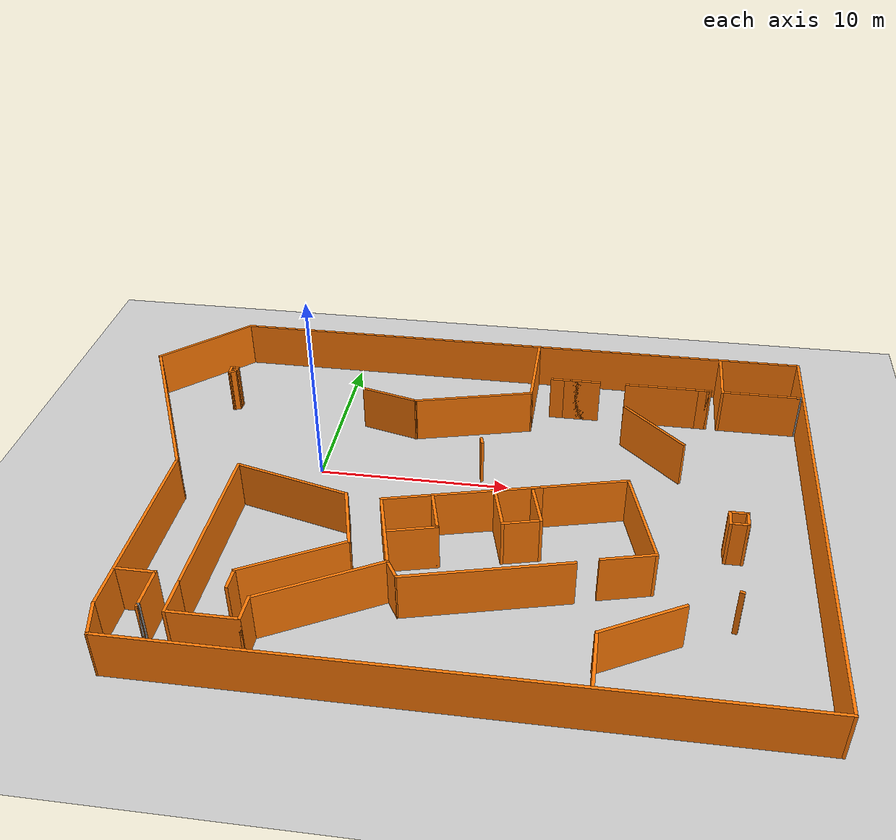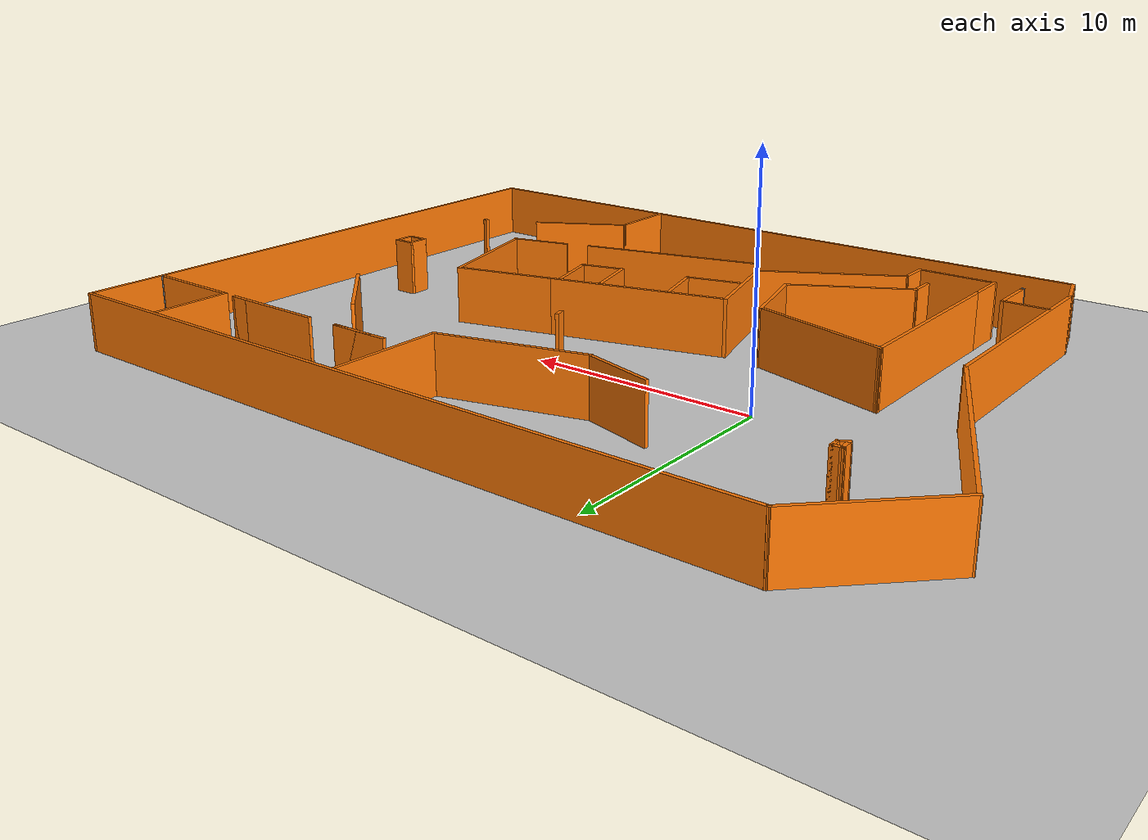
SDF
<sdf version="1.6">
 <world name="default">
  <light name="sun" type="directional">
   <pose>0 0 10 0 -0 0</pose>
   <diffuse>0.8 0.8 0.8 1</diffuse>
   <specular>0.2 0.2 0.2 1</specular>
   <attenuation>
    <range>1000</range>
    <constant>0.9</constant>
    <linear>0.01</linear>
    <quadratic>0.001</quadratic>
   </attenuation>
   <direction>-0.5 0.1 -0.9</direction>
  </light>
  <model name="ground_plane">
   <static>1</static>
   <link name="link">
    <collision name="collision">
     <geometry><plane><normal>0 0 1</normal><size>100 100</size></plane></geometry>
     <surface>
      <contact><collide_bitmask>65535</collide_bitmask></contact>
      <friction><ode><mu>100</mu><mu2>50</mu2></ode></friction>
     </surface>
    </collision>
    <visual name="visual">
     <cast_shadows>0</cast_shadows>
     <geometry><plane><normal>0 0 1</normal><size>100 100</size></plane></geometry>
     <material>
      <script><uri>file://media/materials/scripts/gazebo.material</uri><name>Gazebo/Grey</name></script>
     </material>
    </visual>
   </link>
  </model>
  <gravity>0 0 -9.8</gravity>
  <magnetic_field>6e-06 2.3e-05 -4.2e-05</magnetic_field>
  <atmosphere type="adiabatic"/>
  <physics name="default_physics" default="0" type="ode">
   <max_step_size>0.001</max_step_size>
   <real_time_factor>1</real_time_factor>
   <real_time_update_rate>1000</real_time_update_rate>
  </physics>
  <scene><ambient>0.4 0.4 0.4 1</ambient><background>0.7 0.7 0.7 1</background><shadows>1</shadows></scene>
  <spherical_coordinates>
   <surface_model>EARTH_WGS84</surface_model>
   <latitude_deg>0</latitude_deg>
   <longitude_deg>0</longitude_deg>
   <elevation>0</elevation>
   <heading_deg>0</heading_deg>
  </spherical_coordinates>
  <model name="building">
   <pose>7.1915 -2.62982 0 0 -0 0</pose>
   <link name="Wall_0">
    <collision name="Wall_0_Collision">
     <geometry><box><size>9 0.15 2.5</size></box></geometry>
     <pose>0 0 1.25 0 -0 0</pose>
    </collision>
    <visual name="Wall_0_Visual">
     <pose>0 0 1.25 0 -0 0</pose>
     <geometry><box><size>9 0.15 2.5</size></box></geometry>
     <material>
      <script><uri>file://media/materials/scripts/gazebo.material</uri><name>Gazebo/Grey</name></script>
      <ambient>0.996078 0.47451 0.0196078 1</ambient>
     </material>
    </visual>
    <pose>-10.5026 -5.02041 0 0 -0 1.5708</pose>
   </link>
   <link name="Wall_1">
    <collision name="Wall_1_Collision">
     <geometry><box><size>6.25 0.15 2.5</size></box></geometry>
     <pose>0 0 1.25 0 -0 0</pose>
    </collision>
    <visual name="Wall_1_Visual">
     <pose>0 0 1.25 0 -0 0</pose>
     <geometry><box><size>6.25 0.15 2.5</size></box></geometry>
     <material>
      <script><uri>file://media/materials/scripts/gazebo.material</uri><name>Gazebo/Grey</name></script>
      <ambient>0.996078 0.47451 0.0196078 1</ambient>
     </material>
    </visual>
    <pose>-7.55655 -1.38481 0 0 0 -0.261799</pose>
   </link>
   <link name="Wall_10">
    <collision name="Wall_10_Collision">
     <geometry><box><size>6.5 0.15 2.5</size></box></geometry>
     <pose>0 0 1.25 0 -0 0</pose>
    </collision>
    <visual name="Wall_10_Visual">
     <pose>0 0 1.25 0 -0 0</pose>
     <geometry><box><size>6.5 0.15 2.5</size></box></geometry>
     <material>
      <script><uri>file://media/materials/scripts/gazebo.material</uri><name>Gazebo/Grey</name></script>
      <ambient>0.996078 0.47451 0.0196078 1</ambient>
     </material>
    </visual>
    <pose>-4.403 -8.35791 0 0 -0 0.523599</pose>
   </link>
   <link name="Wall_11">
    <collision name="Wall_11_Collision">
     <geometry><box><size>4.75 0.15 2.5</size></box></geometry>
     <pose>0 0 1.25 0 -0 0</pose>
    </collision>
    <visual name="Wall_11_Visual">
     <pose>0 0 1.25 0 -0 0</pose>
     <geometry><box><size>4.75 0.15 2.5</size></box></geometry>
     <material>
      <script><uri>file://media/materials/scripts/gazebo.material</uri><name>Gazebo/Grey</name></script>
      <ambient>0.996078 0.47451 0.0196078 1</ambient>
     </material>
    </visual>
    <pose>-2.24865 -4.54878 0 0 -0 1.8326</pose>
   </link>
   <link name="Wall_12">
    <collision name="Wall_12_Collision">
     <geometry><box><size>8 0.15 2.5</size></box></geometry>
     <pose>0 0 1.25 0 -0 0</pose>
    </collision>
    <visual name="Wall_12_Visual">
     <pose>0 0 1.25 0 -0 0</pose>
     <geometry><box><size>8 0.15 2.5</size></box></geometry>
     <material>
      <script><uri>file://media/materials/scripts/gazebo.material</uri><name>Gazebo/Grey</name></script>
      <ambient>0.996078 0.47451 0.0196078 1</ambient>
     </material>
    </visual>
    <pose>0.947326 -1.31129 0 0 -0 0.261799</pose>
   </link>
   <link name="Wall_13">
    <collision name="Wall_13_Collision">
     <geometry><box><size>4.5 0.15 2.5</size></box></geometry>
     <pose>0 0 1.25 0 -0 0</pose>
    </collision>
    <visual name="Wall_13_Visual">
     <pose>0 0 1.25 0 -0 0</pose>
     <geometry><box><size>4.5 0.15 2.5</size></box></geometry>
     <material>
      <script><uri>file://media/materials/scripts/gazebo.material</uri><name>Gazebo/Grey</name></script>
      <ambient>0.996078 0.47451 0.0196078 1</ambient>
     </material>
    </visual>
    <pose>6.83947 0.267506 0 0 -0 0.261799</pose>
   </link>
   <link name="Wall_14">
    <collision name="Wall_14_Collision">
     <geometry><box><size>5.75 0.15 2.5</size></box></geometry>
     <pose>0 0 1.25 0 -0 0</pose>
    </collision>
    <visual name="Wall_14_Visual">
     <pose>0 0 1.25 0 -0 0</pose>
     <geometry><box><size>5.75 0.15 2.5</size></box></geometry>
     <material>
      <script><uri>file://media/materials/scripts/gazebo.material</uri><name>Gazebo/Grey</name></script>
      <ambient>0.996078 0.47451 0.0196078 1</ambient>
     </material>
    </visual>
    <pose>9.66506 -1.87416 0 0 0 -1.309</pose>
   </link>
   <link name="Wall_15">
    <collision name="Wall_15_Collision">
     <geometry><box><size>2.75 0.15 2.5</size></box></geometry>
     <pose>0 0 1.25 0 -0 0</pose>
    </collision>
    <visual name="Wall_15_Visual">
     <pose>0 0 1.25 0 -0 0</pose>
     <geometry><box><size>2.75 0.15 2.5</size></box></geometry>
     <material>
      <script><uri>file://media/materials/scripts/gazebo.material</uri><name>Gazebo/Grey</name></script>
      <ambient>0.996078 0.47451 0.0196078 1</ambient>
     </material>
    </visual>
    <pose>9.13405 -4.91521 0 0 0 -2.87979</pose>
   </link>
   <link name="Wall_19">
    <collision name="Wall_19_Collision">
     <geometry><box><size>8.25 0.15 2.5</size></box></geometry>
     <pose>0 0 1.25 0 -0 0</pose>
    </collision>
    <visual name="Wall_19_Visual">
     <pose>0 0 1.25 0 -0 0</pose>
     <geometry><box><size>8.25 0.15 2.5</size></box></geometry>
     <material>
      <script><uri>file://media/materials/scripts/gazebo.material</uri><name>Gazebo/Grey</name></script>
      <ambient>0.996078 0.47451 0.0196078 1</ambient>
     </material>
    </visual>
    <pose>2.84602 -6.68249 0 0 0 -2.87979</pose>
   </link>
   <link name="Wall_2">
    <collision name="Wall_2_Collision">
     <geometry><box><size>3.75 0.15 2.5</size></box></geometry>
     <pose>0 0 1.25 0 -0 0</pose>
    </collision>
    <visual name="Wall_2_Visual">
     <pose>0 0 1.25 0 -0 0</pose>
     <geometry><box><size>3.75 0.15 2.5</size></box></geometry>
     <material>
      <script><uri>file://media/materials/scripts/gazebo.material</uri><name>Gazebo/Grey</name></script>
      <ambient>0.996078 0.47451 0.0196078 1</ambient>
     </material>
    </visual>
    <pose>-4.14461 -3.91288 0 0 0 -1.309</pose>
   </link>
   <link name="Wall_20">
    <collision name="Wall_20_Collision">
     <geometry><box><size>1.27569 0.15 2.5</size></box></geometry>
     <pose>0 0 1.25 0 -0 0</pose>
    </collision>
    <visual name="Wall_20_Visual">
     <pose>0 0 1.25 0 -0 0</pose>
     <geometry><box><size>1.27569 0.15 2.5</size></box></geometry>
     <material>
      <script><uri>file://media/materials/scripts/gazebo.material</uri><name>Gazebo/Grey</name></script>
      <ambient>0.996078 0.47451 0.0196078 1</ambient>
     </material>
    </visual>
    <pose>-1.35967 -7.25056 0 0 -0 2.11976</pose>
   </link>
   <link name="Wall_23">
    <collision name="Wall_23_Collision">
     <geometry><box><size>2.5 0.15 2.5</size></box></geometry>
     <pose>0 0 1.25 0 -0 0</pose>
    </collision>
    <visual name="Wall_23_Visual">
     <pose>0 0 1.25 0 -0 0</pose>
     <geometry><box><size>2.5 0.15 2.5</size></box></geometry>
     <material>
      <script><uri>file://media/materials/scripts/gazebo.material</uri><name>Gazebo/Grey</name></script>
      <ambient>0.996078 0.47451 0.0196078 1</ambient>
     </material>
    </visual>
    <pose>2.86184 -2.21723 0 0 0 -1.309</pose>
   </link>
   <link name="Wall_24">
    <collision name="Wall_24_Collision">
     <geometry><box><size>2 0.15 2.5</size></box></geometry>
     <pose>0 0 1.25 0 -0 0</pose>
    </collision>
    <visual name="Wall_24_Visual">
     <pose>0 0 1.25 0 -0 0</pose>
     <geometry><box><size>2 0.15 2.5</size></box></geometry>
     <material>
      <script><uri>file://media/materials/scripts/gazebo.material</uri><name>Gazebo/Grey</name></script>
      <ambient>0.996078 0.47451 0.0196078 1</ambient>
     </material>
    </visual>
    <pose>4.05943 -3.11278 0 0 -0 0.261799</pose>
   </link>
   <link name="Wall_25">
    <collision name="Wall_25_Collision">
     <geometry><box><size>2.5 0.15 2.5</size></box></geometry>
     <pose>0 0 1.25 0 -0 0</pose>
    </collision>
    <visual name="Wall_25_Visual">
     <pose>0 0 1.25 0 -0 0</pose>
     <geometry><box><size>2.5 0.15 2.5</size></box></geometry>
     <material>
      <script><uri>file://media/materials/scripts/gazebo.material</uri><name>Gazebo/Grey</name></script>
      <ambient>0.996078 0.47451 0.0196078 1</ambient>
     </material>
    </visual>
    <pose>4.6488 -1.73841 0 0 -0 1.8326</pose>
   </link>
   <link name="Wall_27">
    <collision name="Wall_27_Collision">
     <geometry><box><size>2.5 0.15 2.5</size></box></geometry>
     <pose>0 0 1.25 0 -0 0</pose>
    </collision>
    <visual name="Wall_27_Visual">
     <pose>0 0 1.25 0 -0 0</pose>
     <geometry><box><size>2.5 0.15 2.5</size></box></geometry>
     <material>
      <script><uri>file://media/materials/scripts/gazebo.material</uri><name>Gazebo/Grey</name></script>
      <ambient>0.996078 0.47451 0.0196078 1</ambient>
     </material>
    </visual>
    <pose>-0.117383 -2.90883 0 0 0 -1.309</pose>
   </link>
   <link name="Wall_28">
    <collision name="Wall_28_Collision">
     <geometry><box><size>2.5 0.15 2.5</size></box></geometry>
     <pose>0 0 1.25 0 -0 0</pose>
    </collision>
    <visual name="Wall_28_Visual">
     <pose>0 0 1.25 0 -0 0</pose>
     <geometry><box><size>2.5 0.15 2.5</size></box></geometry>
     <material>
      <script><uri>file://media/materials/scripts/gazebo.material</uri><name>Gazebo/Grey</name></script>
      <ambient>0.996078 0.47451 0.0196078 1</ambient>
     </material>
    </visual>
    <pose>-0.948234 -4.34791 0 0 0 -2.87979</pose>
   </link>
   <link name="Wall_3">
    <collision name="Wall_3_Collision">
     <geometry><box><size>5.5 0.15 2.5</size></box></geometry>
     <pose>0 0 1.25 0 -0 0</pose>
    </collision>
    <visual name="Wall_3_Visual">
     <pose>0 0 1.25 0 -0 0</pose>
     <geometry><box><size>5.5 0.15 2.5</size></box></geometry>
     <material>
      <script><uri>file://media/materials/scripts/gazebo.material</uri><name>Gazebo/Grey</name></script>
      <ambient>0.996078 0.47451 0.0196078 1</ambient>
     </material>
    </visual>
    <pose>-5.99535 -6.98904 0 0 0 -2.61799</pose>
   </link>
   <link name="Wall_30">
    <collision name="Wall_30_Collision">
     <geometry><box><size>10.75 0.15 2.5</size></box></geometry>
     <pose>0 0 1.25 0 -0 0</pose>
    </collision>
    <visual name="Wall_30_Visual">
     <pose>0 0 1.25 0 -0 0</pose>
     <geometry><box><size>10.75 0.15 2.5</size></box></geometry>
     <material>
      <script><uri>file://media/materials/scripts/gazebo.material</uri><name>Gazebo/Grey</name></script>
      <ambient>0.996078 0.47451 0.0196078 1</ambient>
     </material>
    </visual>
    <pose>-13.695 -5.97014 0 0 -0 1.5708</pose>
   </link>
   <link name="Wall_32">
    <collision name="Wall_32_Collision">
     <geometry><box><size>2 0.15 2.5</size></box></geometry>
     <pose>0 0 1.25 0 -0 0</pose>
    </collision>
    <visual name="Wall_32_Visual">
     <pose>0 0 1.25 0 -0 0</pose>
     <geometry><box><size>2 0.15 2.5</size></box></geometry>
     <material>
      <script><uri>file://media/materials/scripts/gazebo.material</uri><name>Gazebo/Grey</name></script>
      <ambient>0.996078 0.47451 0.0196078 1</ambient>
     </material>
    </visual>
    <pose>-12.6902 -8.95593 0 0 -0 0</pose>
   </link>
   <link name="Wall_33">
    <collision name="Wall_33_Collision">
     <geometry><box><size>2.25 0.15 2.5</size></box></geometry>
     <pose>0 0 1.25 0 -0 0</pose>
    </collision>
    <visual name="Wall_33_Visual">
     <pose>0 0 1.25 0 -0 0</pose>
     <geometry><box><size>2.25 0.15 2.5</size></box></geometry>
     <material>
      <script><uri>file://media/materials/scripts/gazebo.material</uri><name>Gazebo/Grey</name></script>
      <ambient>0.996078 0.47451 0.0196078 1</ambient>
     </material>
    </visual>
    <pose>-11.7652 -10.0059 0 0 0 -1.5708</pose>
   </link>
   <link name="Wall_34">
    <collision name="Wall_34_Collision">
     <geometry><box><size>0.25 0.15 2.5</size></box></geometry>
     <pose>0 0 1.25 0 -0 0</pose>
    </collision>
    <visual name="Wall_34_Visual">
     <pose>0 0 1.25 0 -0 0</pose>
     <geometry><box><size>0.25 0.15 2.5</size></box></geometry>
     <material>
      <script><uri>file://media/materials/scripts/gazebo.material</uri><name>Gazebo/Grey</name></script>
      <ambient>1 1 1 1</ambient>
     </material>
    </visual>
    <pose>-11.7652 -11.1059 0 0 0 -1.5708</pose>
   </link>
   <link name="Wall_36">
    <collision name="Wall_36_Collision">
     <geometry><box><size>0.25 0.15 2.5</size></box></geometry>
     <pose>0 0 1.25 0 -0 0</pose>
    </collision>
    <visual name="Wall_36_Visual">
     <pose>0 0 1.25 0 -0 0</pose>
     <geometry><box><size>0.25 0.15 2.5</size></box></geometry>
     <material>
      <script><uri>file://media/materials/scripts/gazebo.material</uri><name>Gazebo/Grey</name></script>
      <ambient>0.996078 0.47451 0.0196078 1</ambient>
     </material>
    </visual>
    <pose>-11.7652 -11.1059 0 0 -0 1.5708</pose>
   </link>
   <link name="Wall_38">
    <collision name="Wall_38_Collision">
     <geometry><box><size>2 0.15 2.5</size></box></geometry>
     <pose>0 0 1.25 0 -0 0</pose>
    </collision>
    <visual name="Wall_38_Visual">
     <pose>0 0 1.25 0 -0 0</pose>
     <geometry><box><size>2 0.15 2.5</size></box></geometry>
     <material>
      <script><uri>file://media/materials/scripts/gazebo.material</uri><name>Gazebo/Grey</name></script>
      <ambient>0.996078 0.47451 0.0196078 1</ambient>
     </material>
    </visual>
    <pose>-13.4556 -12.1636 0 0 0 -1.309</pose>
   </link>
   <link name="Wall_39">
    <collision name="Wall_39_Collision">
     <geometry><box><size>31.5 0.15 2.5</size></box></geometry>
     <pose>0 0 1.25 0 -0 0</pose>
    </collision>
    <visual name="Wall_39_Visual">
     <pose>0 0 1.25 0 -0 0</pose>
     <geometry><box><size>31.5 0.15 2.5</size></box></geometry>
     <material>
      <script><uri>file://media/materials/scripts/gazebo.material</uri><name>Gazebo/Grey</name></script>
      <ambient>0.996078 0.47451 0.0196078 1</ambient>
     </material>
    </visual>
    <pose>2.45882 -13.0571 0 0 -0 0</pose>
   </link>
   <link name="Wall_4">
    <collision name="Wall_4_Collision">
     <geometry><box><size>1.25 0.15 2.5</size></box></geometry>
     <pose>0 0 1.25 0 -0 0</pose>
    </collision>
    <visual name="Wall_4_Visual">
     <pose>0 0 1.25 0 -0 0</pose>
     <geometry><box><size>1.25 0.15 2.5</size></box></geometry>
     <material>
      <script><uri>file://media/materials/scripts/gazebo.material</uri><name>Gazebo/Grey</name></script>
      <ambient>0.996078 0.47451 0.0196078 1</ambient>
     </material>
    </visual>
    <pose>-8.31197 -8.87654 0 0 0 -1.5708</pose>
   </link>
   <link name="Wall_40">
    <collision name="Wall_40_Collision">
     <geometry><box><size>26.25 0.15 2.5</size></box></geometry>
     <pose>0 0 1.25 0 -0 0</pose>
    </collision>
    <visual name="Wall_40_Visual">
     <pose>0 0 1.25 0 -0 0</pose>
     <geometry><box><size>26.25 0.15 2.5</size></box></geometry>
     <material>
      <script><uri>file://media/materials/scripts/gazebo.material</uri><name>Gazebo/Grey</name></script>
      <ambient>0.996078 0.47451 0.0196078 1</ambient>
     </material>
    </visual>
    <pose>18.1338 -0.007105 0 0 -0 1.5708</pose>
   </link>
   <link name="Wall_41">
    <collision name="Wall_41_Collision">
     <geometry><box><size>32.25 0.15 2.5</size></box></geometry>
     <pose>0 0 1.25 0 -0 0</pose>
    </collision>
    <visual name="Wall_41_Visual">
     <pose>0 0 1.25 0 -0 0</pose>
     <geometry><box><size>32.25 0.15 2.5</size></box></geometry>
     <material>
      <script><uri>file://media/materials/scripts/gazebo.material</uri><name>Gazebo/Grey</name></script>
      <ambient>0.996078 0.47451 0.0196078 1</ambient>
     </material>
    </visual>
    <pose>2.08382 13.0429 0 0 -0 3.14159</pose>
   </link>
   <link name="Wall_42">
    <collision name="Wall_42_Collision">
     <geometry><box><size>6 0.15 2.5</size></box></geometry>
     <pose>0 0 1.25 0 -0 0</pose>
    </collision>
    <visual name="Wall_42_Visual">
     <pose>0 0 1.25 0 -0 0</pose>
     <geometry><box><size>6 0.15 2.5</size></box></geometry>
     <material>
      <script><uri>file://media/materials/scripts/gazebo.material</uri><name>Gazebo/Grey</name></script>
      <ambient>0.996078 0.47451 0.0196078 1</ambient>
     </material>
    </visual>
    <pose>-16.0345 10.9746 0 0 0 -2.35619</pose>
   </link>
   <link name="Wall_43">
    <collision name="Wall_43_Collision">
     <geometry><box><size>10.6922 0.15 2.5</size></box></geometry>
     <pose>0 0 1.25 0 -0 0</pose>
    </collision>
    <visual name="Wall_43_Visual">
     <pose>0 0 1.25 0 -0 0</pose>
     <geometry><box><size>10.6922 0.15 2.5</size></box></geometry>
     <material>
      <script><uri>file://media/materials/scripts/gazebo.material</uri><name>Gazebo/Grey</name></script>
      <ambient>0.996078 0.47451 0.0196078 1</ambient>
     </material>
    </visual>
    <pose>-15.8989 4.11809 0 0 0 -1.13943</pose>
   </link>
   <link name="Wall_45">
    <collision name="Wall_45_Collision">
     <geometry><box><size>5 0.15 2.5</size></box></geometry>
     <pose>0 0 1.25 0 -0 0</pose>
    </collision>
    <visual name="Wall_45_Visual">
     <pose>0 0 1.25 0 -0 0</pose>
     <geometry><box><size>5 0.15 2.5</size></box></geometry>
     <material>
      <script><uri>file://media/materials/scripts/gazebo.material</uri><name>Gazebo/Grey</name></script>
      <ambient>0.996078 0.47451 0.0196078 1</ambient>
     </material>
    </visual>
    <pose>3.40884 10.4836 0 0 0 -1.5708</pose>
   </link>
   <link name="Wall_46">
    <collision name="Wall_46_Collision">
     <geometry><box><size>6.5 0.15 2.5</size></box></geometry>
     <pose>0 0 1.25 0 -0 0</pose>
    </collision>
    <visual name="Wall_46_Visual">
     <pose>0 0 1.25 0 -0 0</pose>
     <geometry><box><size>6.5 0.15 2.5</size></box></geometry>
     <material>
      <script><uri>file://media/materials/scripts/gazebo.material</uri><name>Gazebo/Grey</name></script>
      <ambient>0.996078 0.47451 0.0196078 1</ambient>
     </material>
    </visual>
    <pose>0.342024 7.23687 0 0 0 -2.87979</pose>
   </link>
   <link name="Wall_47">
    <collision name="Wall_47_Collision">
     <geometry><box><size>3.25 0.15 2.5</size></box></geometry>
     <pose>0 0 1.25 0 -0 0</pose>
    </collision>
    <visual name="Wall_47_Visual">
     <pose>0 0 1.25 0 -0 0</pose>
     <geometry><box><size>3.25 0.15 2.5</size></box></geometry>
     <material>
      <script><uri>file://media/materials/scripts/gazebo.material</uri><name>Gazebo/Grey</name></script>
      <ambient>0.996078 0.47451 0.0196078 1</ambient>
     </material>
    </visual>
    <pose>-4.22197 6.81629 0 0 -0 2.87979</pose>
   </link>
   <link name="Wall_49">
    <collision name="Wall_49_Collision">
     <geometry><box><size>4.5 0.15 2.5</size></box></geometry>
     <pose>0 0 1.25 0 -0 0</pose>
    </collision>
    <visual name="Wall_49_Visual">
     <pose>0 0 1.25 0 -0 0</pose>
     <geometry><box><size>4.5 0.15 2.5</size></box></geometry>
     <material>
      <script><uri>file://media/materials/scripts/gazebo.material</uri><name>Gazebo/Grey</name></script>
      <ambient>0.996078 0.47451 0.0196078 1</ambient>
     </material>
    </visual>
    <pose>10.1049 5.86558 0 0 0 -0.785398</pose>
   </link>
   <link name="Wall_51">
    <collision name="Wall_51_Collision">
     <geometry><box><size>1 0.15 2.5</size></box></geometry>
     <pose>0 0 1.25 0 -0 0</pose>
    </collision>
    <visual name="Wall_51_Visual">
     <pose>0 0 1.25 0 -0 0</pose>
     <geometry><box><size>1 0.15 2.5</size></box></geometry>
     <material>
      <script><uri>file://media/materials/scripts/gazebo.material</uri><name>Gazebo/Grey</name></script>
      <ambient>0.996078 0.47451 0.0196078 1</ambient>
     </material>
    </visual>
    <pose>13.7945 -1.37162 0 0 0 -1.5708</pose>
   </link>
   <link name="Wall_52">
    <collision name="Wall_52_Collision">
     <geometry><box><size>1 0.15 2.5</size></box></geometry>
     <pose>0 0 1.25 0 -0 0</pose>
    </collision>
    <visual name="Wall_52_Visual">
     <pose>0 0 1.25 0 -0 0</pose>
     <geometry><box><size>1 0.15 2.5</size></box></geometry>
     <material>
      <script><uri>file://media/materials/scripts/gazebo.material</uri><name>Gazebo/Grey</name></script>
      <ambient>0.996078 0.47451 0.0196078 1</ambient>
     </material>
    </visual>
    <pose>14.2195 -1.79662 0 0 -0 0</pose>
   </link>
   <link name="Wall_53">
    <collision name="Wall_53_Collision">
     <geometry><box><size>1 0.15 2.5</size></box></geometry>
     <pose>0 0 1.25 0 -0 0</pose>
    </collision>
    <visual name="Wall_53_Visual">
     <pose>0 0 1.25 0 -0 0</pose>
     <geometry><box><size>1 0.15 2.5</size></box></geometry>
     <material>
      <script><uri>file://media/materials/scripts/gazebo.material</uri><name>Gazebo/Grey</name></script>
      <ambient>0.996078 0.47451 0.0196078 1</ambient>
     </material>
    </visual>
    <pose>14.6445 -1.37162 0 0 -0 1.5708</pose>
   </link>
   <link name="Wall_54">
    <collision name="Wall_54_Collision">
     <geometry><box><size>1 0.15 2.5</size></box></geometry>
     <pose>0 0 1.25 0 -0 0</pose>
    </collision>
    <visual name="Wall_54_Visual">
     <pose>0 0 1.25 0 -0 0</pose>
     <geometry><box><size>1 0.15 2.5</size></box></geometry>
     <material>
      <script><uri>file://media/materials/scripts/gazebo.material</uri><name>Gazebo/Grey</name></script>
      <ambient>0.996078 0.47451 0.0196078 1</ambient>
     </material>
    </visual>
    <pose>14.2195 -0.946615 0 0 -0 3.14159</pose>
   </link>
   <link name="Wall_56">
    <collision name="Wall_56_Collision">
     <geometry><box><size>0.25 0.15 2.5</size></box></geometry>
     <pose>0 0 1.25 0 -0 0</pose>
    </collision>
    <visual name="Wall_56_Visual">
     <pose>0 0 1.25 0 -0 0</pose>
     <geometry><box><size>0.25 0.15 2.5</size></box></geometry>
     <material>
      <script><uri>file://media/materials/scripts/gazebo.material</uri><name>Gazebo/Grey</name></script>
      <ambient>0.996078 0.47451 0.0196078 1</ambient>
     </material>
    </visual>
    <pose>14.1203 -6.55716 0 0 0 -0.261799</pose>
   </link>
   <link name="Wall_58">
    <collision name="Wall_58_Collision">
     <geometry><box><size>3.25 0.15 2.5</size></box></geometry>
     <pose>0 0 1.25 0 -0 0</pose>
    </collision>
    <visual name="Wall_58_Visual">
     <pose>0 0 1.25 0 -0 0</pose>
     <geometry><box><size>3.25 0.15 2.5</size></box></geometry>
     <material>
      <script><uri>file://media/materials/scripts/gazebo.material</uri><name>Gazebo/Grey</name></script>
      <ambient>0.996078 0.47451 0.0196078 1</ambient>
     </material>
    </visual>
    <pose>7.94244 -11.4708 0 0 -0 1.5708</pose>
   </link>
   <link name="Wall_59">
    <collision name="Wall_59_Collision">
     <geometry><box><size>4.5 0.15 2.5</size></box></geometry>
     <pose>0 0 1.25 0 -0 0</pose>
    </collision>
    <visual name="Wall_59_Visual">
     <pose>0 0 1.25 0 -0 0</pose>
     <geometry><box><size>4.5 0.15 2.5</size></box></geometry>
     <material>
      <script><uri>file://media/materials/scripts/gazebo.material</uri><name>Gazebo/Grey</name></script>
      <ambient>0.996078 0.47451 0.0196078 1</ambient>
     </material>
    </visual>
    <pose>9.82604 -8.83329 0 0 -0 0.523599</pose>
   </link>
   <link name="Wall_61">
    <collision name="Wall_61_Collision">
     <geometry><box><size>0.5 0.15 2.5</size></box></geometry>
     <pose>0 0 1.25 0 -0 0</pose>
    </collision>
    <visual name="Wall_61_Visual">
     <pose>0 0 1.25 0 -0 0</pose>
     <geometry><box><size>0.5 0.15 2.5</size></box></geometry>
     <material>
      <script><uri>file://media/materials/scripts/gazebo.material</uri><name>Gazebo/Grey</name></script>
      <ambient>0.996078 0.47451 0.0196078 1</ambient>
     </material>
    </visual>
    <pose>1.32612 3.20977 0 0 0 -1.309</pose>
   </link>
   <link name="Wall_63">
    <collision name="Wall_63_Collision">
     <geometry><box><size>0.5 0.15 2.5</size></box></geometry>
     <pose>0 0 1.25 0 -0 0</pose>
    </collision>
    <visual name="Wall_63_Visual">
     <pose>0 0 1.25 0 -0 0</pose>
     <geometry><box><size>0.5 0.15 2.5</size></box></geometry>
     <material>
      <script><uri>file://media/materials/scripts/gazebo.material</uri><name>Gazebo/Grey</name></script>
      <ambient>0.996078 0.47451 0.0196078 1</ambient>
     </material>
    </visual>
    <pose>-13.4865 8.30563 0 0 -0 0</pose>
   </link>
   <link name="Wall_64">
    <collision name="Wall_64_Collision">
     <geometry><box><size>0.5 0.15 2.5</size></box></geometry>
     <pose>0 0 1.25 0 -0 0</pose>
    </collision>
    <visual name="Wall_64_Visual">
     <pose>0 0 1.25 0 -0 0</pose>
     <geometry><box><size>0.5 0.15 2.5</size></box></geometry>
     <material>
      <script><uri>file://media/materials/scripts/gazebo.material</uri><name>Gazebo/Grey</name></script>
      <ambient>0.996078 0.47451 0.0196078 1</ambient>
     </material>
    </visual>
    <pose>-13.3116 8.13063 0 0 0 -1.5708</pose>
   </link>
   <link name="Wall_65">
    <collision name="Wall_65_Collision">
     <geometry><box><size>0.5 0.15 2.5</size></box></geometry>
     <pose>0 0 1.25 0 -0 0</pose>
    </collision>
    <visual name="Wall_65_Visual">
     <pose>0 0 1.25 0 -0 0</pose>
     <geometry><box><size>0.5 0.15 2.5</size></box></geometry>
     <material>
      <script><uri>file://media/materials/scripts/gazebo.material</uri><name>Gazebo/Grey</name></script>
      <ambient>0.996078 0.47451 0.0196078 1</ambient>
     </material>
    </visual>
    <pose>-13.4631 7.86813 0 0 0 -2.61799</pose>
   </link>
   <link name="Wall_66">
    <collision name="Wall_66_Collision">
     <geometry><box><size>0.67709 0.15 2.5</size></box></geometry>
     <pose>0 0 1.25 0 -0 0</pose>
    </collision>
    <visual name="Wall_66_Visual">
     <pose>0 0 1.25 0 -0 0</pose>
     <geometry><box><size>0.67709 0.15 2.5</size></box></geometry>
     <material>
      <script><uri>file://media/materials/scripts/gazebo.material</uri><name>Gazebo/Grey</name></script>
      <ambient>0.996078 0.47451 0.0196078 1</ambient>
     </material>
    </visual>
    <pose>-13.6381 8.04313 0 0 -0 1.65988</pose>
   </link>
   <link name="Wall_68">
    <collision name="Wall_68_Collision">
     <geometry><box><size>3.5 0.15 2.5</size></box></geometry>
     <pose>0 0 1.25 0 -0 0</pose>
    </collision>
    <visual name="Wall_68_Visual">
     <pose>0 0 1.25 0 -0 0</pose>
     <geometry><box><size>3.5 0.15 2.5</size></box></geometry>
     <material>
      <script><uri>file://media/materials/scripts/gazebo.material</uri><name>Gazebo/Grey</name></script>
      <ambient>0.996078 0.47451 0.0196078 1</ambient>
     </material>
    </visual>
    <pose>13.7945 11.3261 0 0 0 -1.5708</pose>
   </link>
   <link name="Wall_69">
    <collision name="Wall_69_Collision">
     <geometry><box><size>4.25 0.15 2.5</size></box></geometry>
     <pose>0 0 1.25 0 -0 0</pose>
    </collision>
    <visual name="Wall_69_Visual">
     <pose>0 0 1.25 0 -0 0</pose>
     <geometry><box><size>4.25 0.15 2.5</size></box></geometry>
     <material>
      <script><uri>file://media/materials/scripts/gazebo.material</uri><name>Gazebo/Grey</name></script>
      <ambient>0.996078 0.47451 0.0196078 1</ambient>
     </material>
    </visual>
    <pose>15.8445 9.65114 0 0 -0 0</pose>
   </link>
   <link name="Wall_7">
    <collision name="Wall_7_Collision">
     <geometry><box><size>2 0.15 2.5</size></box></geometry>
     <pose>0 0 1.25 0 -0 0</pose>
    </collision>
    <visual name="Wall_7_Visual">
     <pose>0 0 1.25 0 -0 0</pose>
     <geometry><box><size>2 0.15 2.5</size></box></geometry>
     <material>
      <script><uri>file://media/materials/scripts/gazebo.material</uri><name>Gazebo/Grey</name></script>
      <ambient>0.996078 0.47451 0.0196078 1</ambient>
     </material>
    </visual>
    <pose>-10.5026 -10.3704 0 0 0 -1.5708</pose>
   </link>
   <link name="Wall_71">
    <collision name="Wall_71_Collision">
     <geometry><box><size>0.25 0.15 2.5</size></box></geometry>
     <pose>0 0 1.25 0 -0 0</pose>
    </collision>
    <visual name="Wall_71_Visual">
     <pose>0 0 1.25 0 -0 0</pose>
     <geometry><box><size>0.25 0.15 2.5</size></box></geometry>
     <material>
      <script><uri>file://media/materials/scripts/gazebo.material</uri><name>Gazebo/Grey</name></script>
      <ambient>1 1 1 1</ambient>
     </material>
    </visual>
    <pose>17.9445 9.65114 0 0 -0 0</pose>
   </link>
   <link name="Wall_73">
    <collision name="Wall_73_Collision">
     <geometry><box><size>4 0.15 2.5</size></box></geometry>
     <pose>0 0 1.25 0 -0 0</pose>
    </collision>
    <visual name="Wall_73_Visual">
     <pose>0 0 1.25 0 -0 0</pose>
     <geometry><box><size>4 0.15 2.5</size></box></geometry>
     <material>
      <script><uri>file://media/materials/scripts/gazebo.material</uri><name>Gazebo/Grey</name></script>
      <ambient>0.996078 0.47451 0.0196078 1</ambient>
     </material>
    </visual>
    <pose>10.5048 9.67033 0 0 -0 3.14159</pose>
   </link>
   <link name="Wall_76">
    <collision name="Wall_76_Collision">
     <geometry><box><size>0.75 0.15 2.5</size></box></geometry>
     <pose>0 0 1.25 0 -0 0</pose>
    </collision>
    <visual name="Wall_76_Visual">
     <pose>0 0 1.25 0 -0 0</pose>
     <geometry><box><size>0.75 0.15 2.5</size></box></geometry>
     <material>
      <script><uri>file://media/materials/scripts/gazebo.material</uri><name>Gazebo/Grey</name></script>
      <ambient>0.996078 0.47451 0.0196078 1</ambient>
     </material>
    </visual>
    <pose>12.7298 9.67033 0 0 -0 0</pose>
   </link>
   <link name="Wall_77">
    <collision name="Wall_77_Collision">
     <geometry><box><size>0.25 0.15 2.5</size></box></geometry>
     <pose>0 0 1.25 0 -0 0</pose>
    </collision>
    <visual name="Wall_77_Visual">
     <pose>0 0 1.25 0 -0 0</pose>
     <geometry><box><size>0.25 0.15 2.5</size></box></geometry>
     <material>
      <script><uri>file://media/materials/scripts/gazebo.material</uri><name>Gazebo/Grey</name></script>
      <ambient>0.996078 0.47451 0.0196078 1</ambient>
     </material>
    </visual>
    <pose>13.0798 9.67033 0 0 -0 0</pose>
   </link>
   <link name="Wall_79">
    <collision name="Wall_79_Collision">
     <geometry><box><size>2 0.15 2.5</size></box></geometry>
     <pose>0 0 1.25 0 -0 0</pose>
    </collision>
    <visual name="Wall_79_Visual">
     <pose>0 0 1.25 0 -0 0</pose>
     <geometry><box><size>2 0.15 2.5</size></box></geometry>
     <material>
      <script><uri>file://media/materials/scripts/gazebo.material</uri><name>Gazebo/Grey</name></script>
      <ambient>0.996078 0.47451 0.0196078 1</ambient>
     </material>
    </visual>
    <pose>6.11813 9.66613 0 0 -0 0</pose>
   </link>
   <link name="Wall_8">
    <collision name="Wall_8_Collision">
     <geometry><box><size>3.5 0.15 2.5</size></box></geometry>
     <pose>0 0 1.25 0 -0 0</pose>
    </collision>
    <visual name="Wall_8_Visual">
     <pose>0 0 1.25 0 -0 0</pose>
     <geometry><box><size>3.5 0.15 2.5</size></box></geometry>
     <material>
      <script><uri>file://media/materials/scripts/gazebo.material</uri><name>Gazebo/Grey</name></script>
      <ambient>0.996078 0.47451 0.0196078 1</ambient>
     </material>
    </visual>
    <pose>-8.82763 -11.2954 0 0 -0 0</pose>
   </link>
   <link name="Wall_80">
    <collision name="Wall_80_Collision">
     <geometry><box><size>2.75 0.15 2.5</size></box></geometry>
     <pose>0 0 1.25 0 -0 0</pose>
    </collision>
    <visual name="Wall_80_Visual">
     <pose>0 0 1.25 0 -0 0</pose>
     <geometry><box><size>2.75 0.15 2.5</size></box></geometry>
     <material>
      <script><uri>file://media/materials/scripts/gazebo.material</uri><name>Gazebo/Grey</name></script>
      <ambient>0.996078 0.47451 0.0196078 1</ambient>
     </material>
    </visual>
    <pose>5.74313 9.66613 0 0 -0 3.14159</pose>
   </link>
   <link name="Wall_9">
    <collision name="Wall_9_Collision">
     <geometry><box><size>1.5 0.15 2.5</size></box></geometry>
     <pose>0 0 1.25 0 -0 0</pose>
    </collision>
    <visual name="Wall_9_Visual">
     <pose>0 0 1.25 0 -0 0</pose>
     <geometry><box><size>1.5 0.15 2.5</size></box></geometry>
     <material>
      <script><uri>file://media/materials/scripts/gazebo.material</uri><name>Gazebo/Grey</name></script>
      <ambient>0.996078 0.47451 0.0196078 1</ambient>
     </material>
    </visual>
    <pose>-7.15263 -10.6204 0 0 -0 1.5708</pose>
   </link>
   <static>1</static>
  </model>
  <physics default="0" name="default_physics" type="ode">
   <gravity>0 0 -9.8066</gravity>
   <ode>
    <solver>
     <type>quick</type>
     <iters>20</iters>
     <sor>1.3</sor>
     <use_dynamic_moi_rescaling>0</use_dynamic_moi_rescaling>
    </solver>
    <constraints>
     <cfm>0</cfm>
     <erp>0.2</erp>
     <contact_max_correcting_vel>100</contact_max_correcting_vel>
     <contact_surface_layer>0.001</contact_surface_layer>
    </constraints>
   </ode>
   <max_step_size>0.002</max_step_size>
   <real_time_factor>1</real_time_factor>
   <real_time_update_rate>500</real_time_update_rate>
   <magnetic_field>6e-06 2.3e-05 -4.2e-05</magnetic_field>
  </physics>
 </world>
</sdf>
